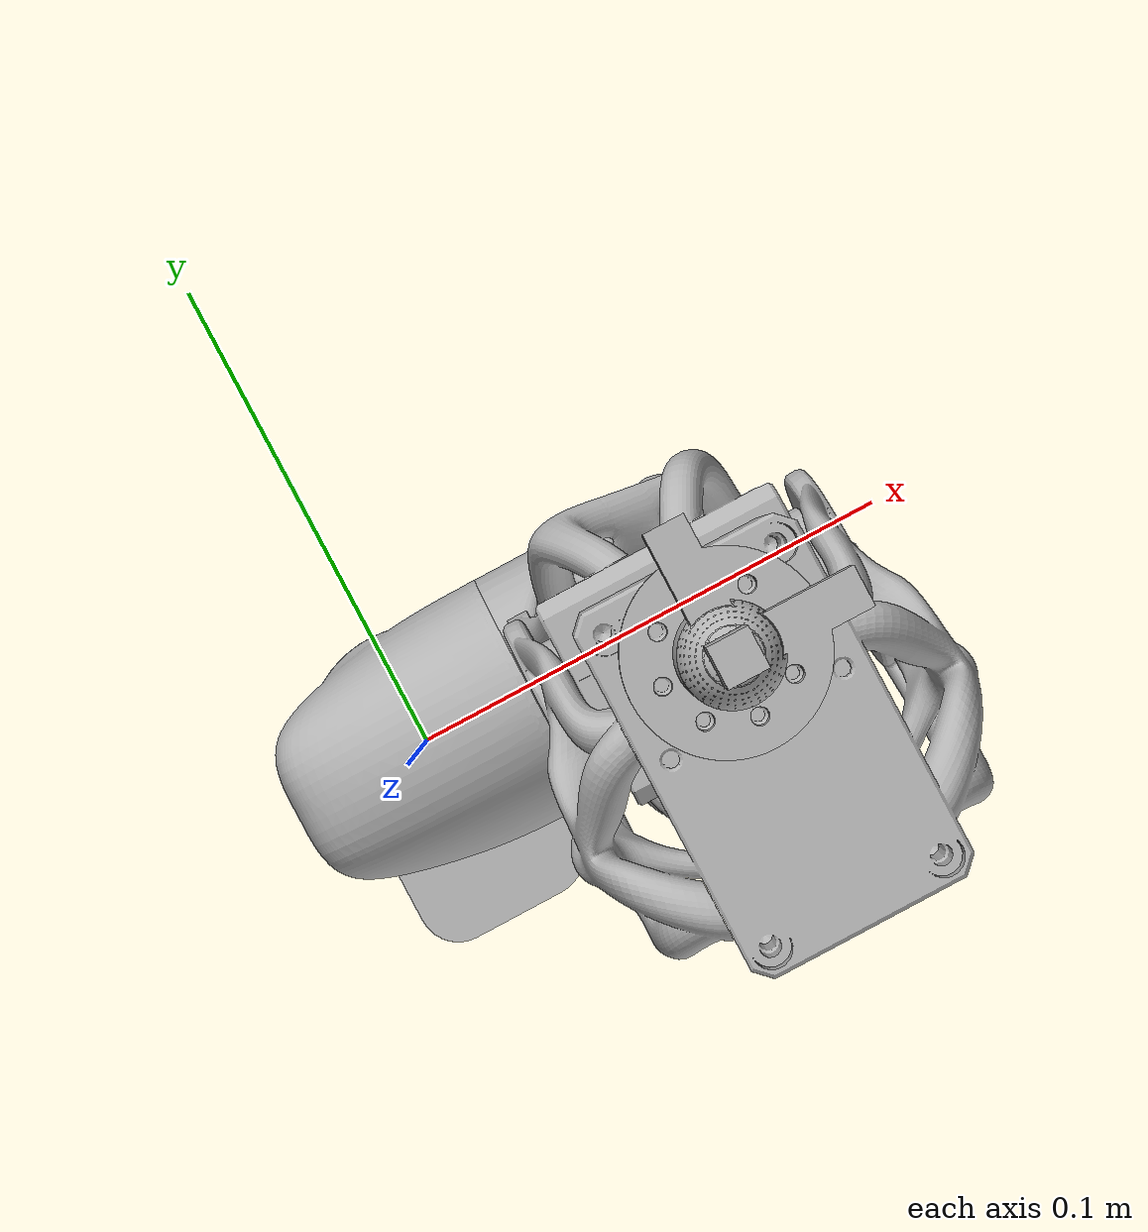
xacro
<?xml version="1.0" ?>
<robot name="bootcamp2_urdf" xmlns:xacro="http://www.ros.org/wiki/xacro">

<xacro:include filename="$(find bootcamp2_urdf_description)/urdf/materials.xacro" />
<xacro:include filename="$(find bootcamp2_urdf_description)/urdf/bootcamp2_urdf.trans" />
<xacro:include filename="$(find bootcamp2_urdf_description)/urdf/bootcamp2_urdf.gazebo" />
<link name="base_link">
  <inertial>
    <origin rpy="0 0 0" xyz="1.0468689086316864e-15 -0.01005117119901429 -0.01889382505663183"/>
    <mass value="0.6084622831710841"/>
    <inertia ixx="0.000302" ixy="0.0" ixz="-0.0" iyy="0.000194" iyz="4e-06" izz="0.000235"/>
  </inertial>
  <visual>
    <origin rpy="0 0 0" xyz="0 0 0"/>
    <geometry>
      <mesh filename="package://bootcamp2_urdf_description/meshes/base_link.stl" scale="0.001 0.001 0.001"/>
    </geometry>
    <material name="silver"/>
  </visual>
  <collision>
    <origin rpy="0 0 0" xyz="0 0 0"/>
    <geometry>
      <mesh filename="package://bootcamp2_urdf_description/meshes/base_link.stl" scale="0.001 0.001 0.001"/>
    </geometry>
  </collision>
</link>

<link name="L1_1">
  <inertial>
    <origin rpy="0 0 0" xyz="0.000434457203252145 -8.875446045327528e-07 0.041187741071427475"/>
    <mass value="0.7153878617187012"/>
    <inertia ixx="0.00032" ixy="-0.0" ixz="-7e-06" iyy="0.000334" iyz="0.0" izz="0.000191"/>
  </inertial>
  <visual>
    <origin rpy="0 0 0" xyz="-0.0 -0.0 -0.002"/>
    <geometry>
      <mesh filename="package://bootcamp2_urdf_description/meshes/L1_1.stl" scale="0.001 0.001 0.001"/>
    </geometry>
    <material name="silver"/>
  </visual>
  <collision>
    <origin rpy="0 0 0" xyz="-0.0 -0.0 -0.002"/>
    <geometry>
      <mesh filename="package://bootcamp2_urdf_description/meshes/L1_1.stl" scale="0.001 0.001 0.001"/>
    </geometry>
  </collision>
</link>

<link name="L2_1">
  <inertial>
    <origin rpy="0 0 0" xyz="0.029110558433872374 -0.007338049207632742 -0.024068613589330035"/>
    <mass value="0.8808688410419647"/>
    <inertia ixx="0.001094" ixy="1.2e-05" ixz="4e-05" iyy="0.001003" iyz="-0.000184" izz="0.000422"/>
  </inertial>
  <visual>
    <origin rpy="0 0 0" xyz="-0.019 -0.0 -0.055"/>
    <geometry>
      <mesh filename="package://bootcamp2_urdf_description/meshes/L2_1.stl" scale="0.001 0.001 0.001"/>
    </geometry>
    <material name="silver"/>
  </visual>
  <collision>
    <origin rpy="0 0 0" xyz="-0.019 -0.0 -0.055"/>
    <geometry>
      <mesh filename="package://bootcamp2_urdf_description/meshes/L2_1.stl" scale="0.001 0.001 0.001"/>
    </geometry>
  </collision>
</link>

<link name="L3_1">
  <inertial>
    <origin rpy="0 0 0" xyz="0.00041901831427814534 2.7229956227561273e-06 0.04237196590892835"/>
    <mass value="0.4933419484022612"/>
    <inertia ixx="0.000318" ixy="0.0" ixz="-3e-06" iyy="0.000316" iyz="0.0" izz="0.000101"/>
  </inertial>
  <visual>
    <origin rpy="0 0 0" xyz="-0.05 -0.0 -0.085"/>
    <geometry>
      <mesh filename="package://bootcamp2_urdf_description/meshes/L3_1.stl" scale="0.001 0.001 0.001"/>
    </geometry>
    <material name="silver"/>
  </visual>
  <collision>
    <origin rpy="0 0 0" xyz="-0.05 -0.0 -0.085"/>
    <geometry>
      <mesh filename="package://bootcamp2_urdf_description/meshes/L3_1.stl" scale="0.001 0.001 0.001"/>
    </geometry>
  </collision>
</link>

<link name="L4_1">
  <inertial>
    <origin rpy="0 0 0" xyz="-0.018556942953716613 -8.385987963903694e-08 0.07291871869136765"/>
    <mass value="0.48111084773021945"/>
    <inertia ixx="0.000453" ixy="0.0" ixz="-3e-06" iyy="0.00047" iyz="-0.0" izz="0.000107"/>
  </inertial>
  <visual>
    <origin rpy="0 0 0" xyz="-0.069 -0.0 -0.152"/>
    <geometry>
      <mesh filename="package://bootcamp2_urdf_description/meshes/L4_1.stl" scale="0.001 0.001 0.001"/>
    </geometry>
    <material name="silver"/>
  </visual>
  <collision>
    <origin rpy="0 0 0" xyz="-0.069 -0.0 -0.152"/>
    <geometry>
      <mesh filename="package://bootcamp2_urdf_description/meshes/L4_1.stl" scale="0.001 0.001 0.001"/>
    </geometry>
  </collision>
</link>

<link name="L5_1">
  <inertial>
    <origin rpy="0 0 0" xyz="-0.019000039220678028 -0.011491339607441588 0.0384485271379999"/>
    <mass value="0.4379098546328849"/>
    <inertia ixx="0.000173" ixy="-0.0" ixz="-0.0" iyy="0.000159" iyz="8e-06" izz="0.000135"/>
  </inertial>
  <visual>
    <origin rpy="0 0 0" xyz="-0.069 0.0 -0.252"/>
    <geometry>
      <mesh filename="package://bootcamp2_urdf_description/meshes/L5_1.stl" scale="0.001 0.001 0.001"/>
    </geometry>
    <material name="silver"/>
  </visual>
  <collision>
    <origin rpy="0 0 0" xyz="-0.069 0.0 -0.252"/>
    <geometry>
      <mesh filename="package://bootcamp2_urdf_description/meshes/L5_1.stl" scale="0.001 0.001 0.001"/>
    </geometry>
  </collision>
</link>

<link name="L6_1">
  <inertial>
    <origin rpy="0 0 0" xyz="0.0008777382830928229 0.0008777375312018252 0.010202499313032687"/>
    <mass value="0.024943813438644116"/>
    <inertia ixx="2e-06" ixy="0.0" ixz="-0.0" iyy="2e-06" iyz="-0.0" izz="1e-06"/>
  </inertial>
  <visual>
    <origin rpy="0 0 0" xyz="-0.05 -0.0 -0.314"/>
    <geometry>
      <mesh filename="package://bootcamp2_urdf_description/meshes/L6_1.stl" scale="0.001 0.001 0.001"/>
    </geometry>
    <material name="silver"/>
  </visual>
  <collision>
    <origin rpy="0 0 0" xyz="-0.05 -0.0 -0.314"/>
    <geometry>
      <mesh filename="package://bootcamp2_urdf_description/meshes/L6_1.stl" scale="0.001 0.001 0.001"/>
    </geometry>
  </collision>
</link>

<link name="LE_1">
  <inertial>
    <origin rpy="0 0 0" xyz="1.0408340855860843e-16 -8.148944305400928e-15 6.661338147750939e-16"/>
    <mass value="0.007102512671235806"/>
    <inertia ixx="0.0" ixy="0.0" ixz="0.0" iyy="0.0" iyz="-0.0" izz="0.0"/>
  </inertial>
  <visual>
    <origin rpy="0 0 0" xyz="-0.05 0.0 -0.3295"/>
    <geometry>
      <mesh filename="package://bootcamp2_urdf_description/meshes/LE_1.stl" scale="0.001 0.001 0.001"/>
    </geometry>
    <material name="silver"/>
  </visual>
  <collision>
    <origin rpy="0 0 0" xyz="-0.05 0.0 -0.3295"/>
    <geometry>
      <mesh filename="package://bootcamp2_urdf_description/meshes/LE_1.stl" scale="0.001 0.001 0.001"/>
    </geometry>
  </collision>
</link>

<joint name="Rev1" type="continuous">
  <origin rpy="0 0 0" xyz="0.0 0.0 0.002"/>
  <parent link="base_link"/>
  <child link="L1_1"/>
  <axis xyz="0.0 0.0 1.0"/>
</joint>

<joint name="Rev2" type="continuous">
  <origin rpy="0 0 0" xyz="0.019 0.0 0.053"/>
  <parent link="L1_1"/>
  <child link="L2_1"/>
  <axis xyz="1.0 -0.0 0.0"/>
</joint>

<joint name="Rev3" type="continuous">
  <origin rpy="0 0 0" xyz="0.031 0.0 0.03"/>
  <parent link="L2_1"/>
  <child link="L3_1"/>
  <axis xyz="0.0 0.0 1.0"/>
</joint>

<joint name="Rev4" type="continuous">
  <origin rpy="0 0 0" xyz="0.019 0.0 0.067"/>
  <parent link="L3_1"/>
  <child link="L4_1"/>
  <axis xyz="1.0 0.0 -0.0"/>
</joint>

<joint name="Rev5" type="continuous">
  <origin rpy="0 0 0" xyz="0.0 -0.0 0.1"/>
  <parent link="L4_1"/>
  <child link="L5_1"/>
  <axis xyz="1.0 0.0 0.0"/>
</joint>

<joint name="Rev6" type="continuous">
  <origin rpy="0 0 0" xyz="-0.019 0.0 0.062"/>
  <parent link="L5_1"/>
  <child link="L6_1"/>
  <axis xyz="-0.0 -0.0 1.0"/>
</joint>

<joint name="Rigid7" type="fixed">
  <origin rpy="0 0 0" xyz="0.0 -0.0 0.0155"/>
  <parent link="L6_1"/>
  <child link="LE_1"/>
</joint>

</robot>

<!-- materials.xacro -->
<robot name="bootcamp2_urdf" xmlns:xacro="http://www.ros.org/wiki/xacro" >

<material name="silver">
  <color rgba="0.700 0.700 0.700 1.000"/>
</material>

</robot>

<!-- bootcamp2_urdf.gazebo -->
<robot name="bootcamp2_urdf" xmlns:xacro="http://www.ros.org/wiki/xacro" >

<xacro:property name="body_color" value="Gazebo/Silver" />

<gazebo>
  <plugin filename="libgazebo_ros_control.so" name="control"/>
</gazebo>
<gazebo reference="base_link">
  <material>${body_color}</material>
  <mu1>0.2</mu1>
  <mu2>0.2</mu2>
  <selfCollide>true</selfCollide>
  <gravity>true</gravity>
</gazebo>

<gazebo reference="L1_1">
  <material>${body_color}</material>
  <mu1>0.2</mu1>
  <mu2>0.2</mu2>
  <selfCollide>true</selfCollide>
</gazebo>

<gazebo reference="L2_1">
  <material>${body_color}</material>
  <mu1>0.2</mu1>
  <mu2>0.2</mu2>
  <selfCollide>true</selfCollide>
</gazebo>

<gazebo reference="L3_1">
  <material>${body_color}</material>
  <mu1>0.2</mu1>
  <mu2>0.2</mu2>
  <selfCollide>true</selfCollide>
</gazebo>

<gazebo reference="L4_1">
  <material>${body_color}</material>
  <mu1>0.2</mu1>
  <mu2>0.2</mu2>
  <selfCollide>true</selfCollide>
</gazebo>

<gazebo reference="L5_1">
  <material>${body_color}</material>
  <mu1>0.2</mu1>
  <mu2>0.2</mu2>
  <selfCollide>true</selfCollide>
</gazebo>

<gazebo reference="L6_1">
  <material>${body_color}</material>
  <mu1>0.2</mu1>
  <mu2>0.2</mu2>
  <selfCollide>true</selfCollide>
</gazebo>

<gazebo reference="LE_1">
  <material>${body_color}</material>
  <mu1>0.2</mu1>
  <mu2>0.2</mu2>
  <selfCollide>true</selfCollide>
</gazebo>

</robot>
